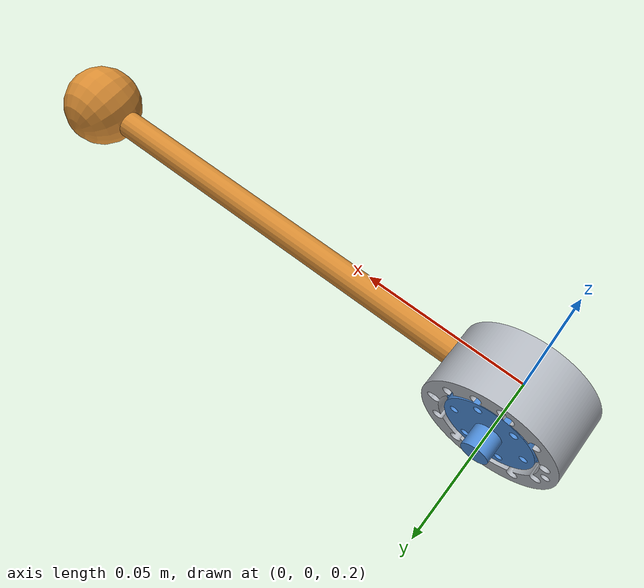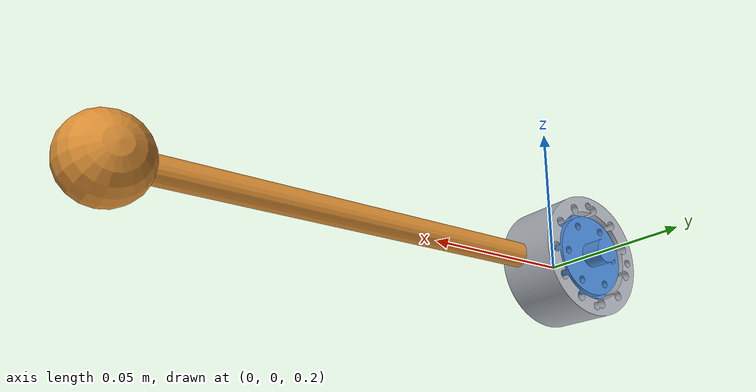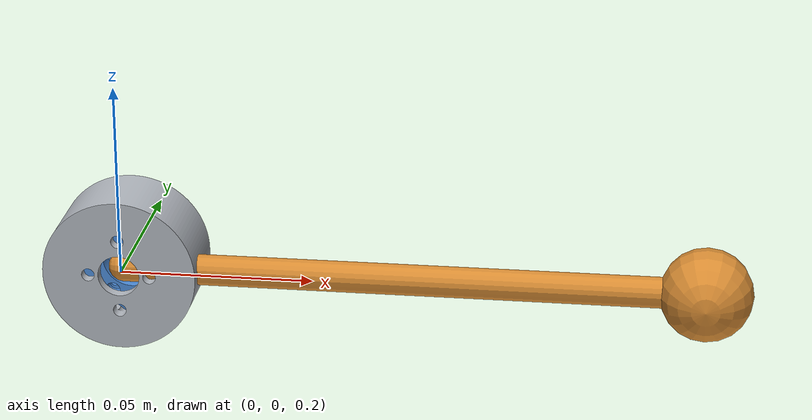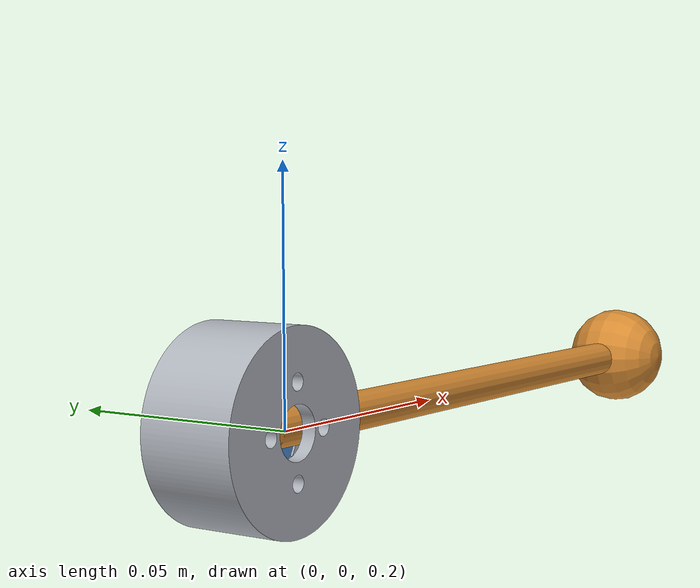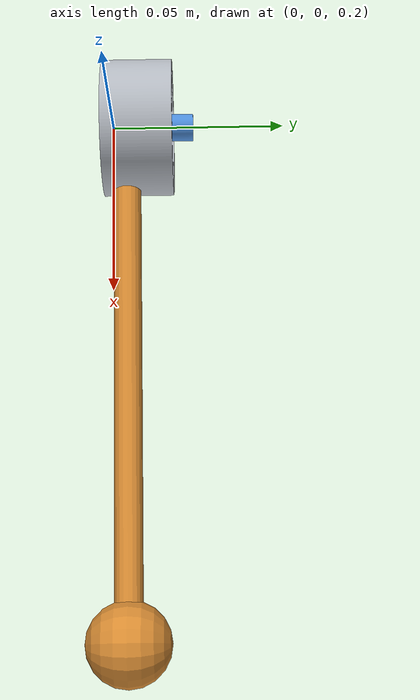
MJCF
<mujoco model="cycloidal_actuator_testbench">

  <compiler meshdir="../cycloidal/out" angle="degree" autolimits="true"/>
  <option gravity="0 0 -9.81" integrator="implicitfast"/>

  <default>
    <joint damping="0.001" frictionloss="0.0" armature="0.0001"/>
    <geom contype="0" conaffinity="0"/>  <!-- no contacts; pure mechanism -->
  </default>

  <asset>
    <mesh name="housing"   file="housing.stl"        scale="0.001 0.001 0.001"/>
    <mesh name="disc"      file="disc.stl"           scale="0.001 0.001 0.001"/>
    <mesh name="output"    file="output_carrier.stl" scale="0.001 0.001 0.001"/>
    <material name="alu"  rgba="0.7 0.72 0.75 1"/>
    <material name="part" rgba="0.30 0.55 0.85 1"/>
    <material name="arm"  rgba="0.85 0.55 0.20 1"/>
  </asset>

  <worldbody>
    <light pos="0.2 -0.2 0.4" dir="-0.4 0.4 -1"/>
    <camera name="iso" pos="0.28 -0.28 0.22" xyaxes="0.7 0.7 0 -0.3 0.3 0.9"/>

    <!-- fixed stator: housing/ring. drive axis laid along world +Y (euler -90 about X)
         so a horizontal output arm swings under gravity in the X-Z plane. -->
    <body name="stator" pos="0 0 0.2" euler="-90 0 0">
      <geom type="mesh" mesh="housing" material="alu"/>

      <!-- rotating output: hinge about the drive axis (local +Z == world +Y). -->
      <body name="rotor">
        <joint name="joint_out" type="hinge" axis="0 0 1" pos="0 0 0"/>
        <inertial pos="0 0 0.003" mass="0.02" diaginertia="5e-6 5e-6 8e-6"/>
        <geom type="mesh" mesh="output" material="part" pos="0 0 0.014"/>
        <geom type="mesh" mesh="disc" material="part" pos="0.0007 0 0.0085"/>

        <!-- test arm rigidly on the output: local +X is world +X (horizontal). -->
        <body name="arm" pos="0 0 0.004">
          <inertial pos="0.075 0 0" mass="0.02" diaginertia="4e-5 4e-5 1e-6"/>
          <geom type="capsule" fromto="0 0 0 0.15 0 0" size="0.004" material="arm"/>
          <body name="payload" pos="0.15 0 0">
            <geom type="sphere" size="0.012" material="arm"/>
            <inertial pos="0 0 0" mass="0.1" diaginertia="6e-6 6e-6 6e-6"/>
          </body>
        </body>
      </body>
    </body>
  </worldbody>

  <actuator>
    <!-- gear (== joint torque per amp) and ctrlrange injected by run.py -->
    <motor name="drive" joint="joint_out" gear="0.0477" ctrllimited="true" ctrlrange="-13 13"/>
  </actuator>
</mujoco>
